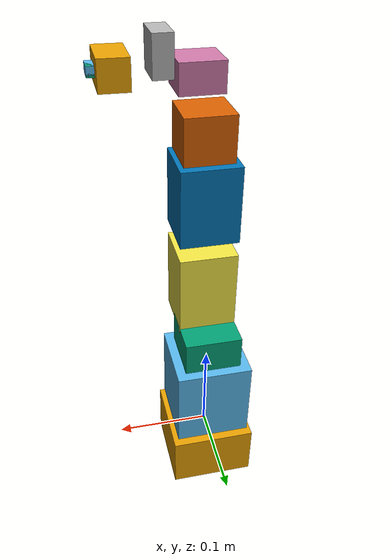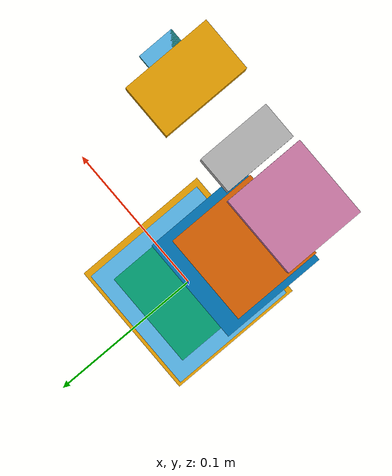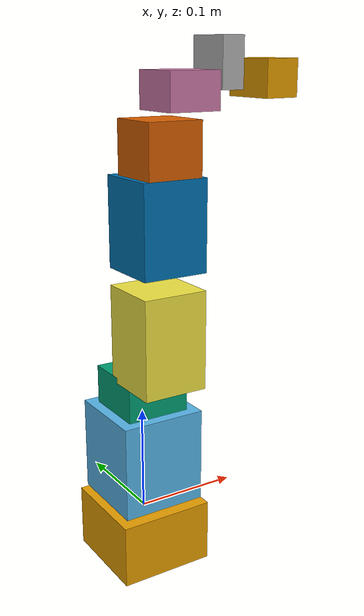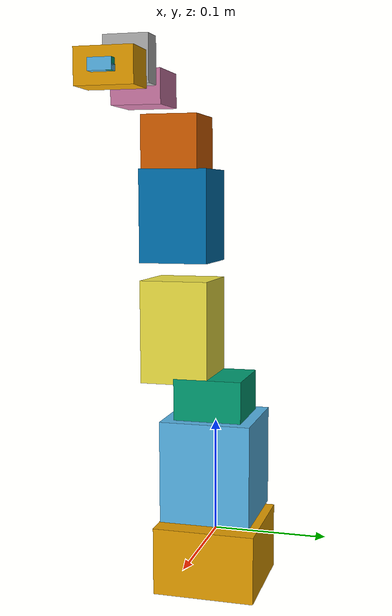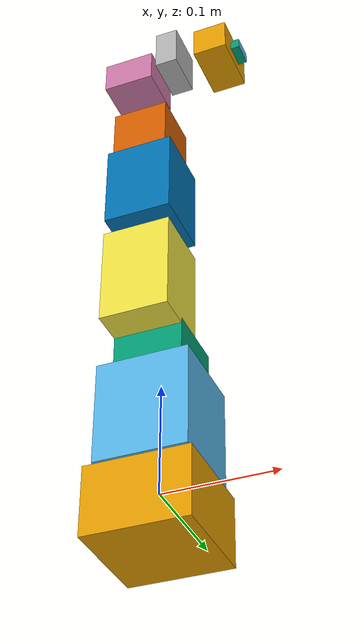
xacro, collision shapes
<?xml version="1.0"?>
<robot xmlns:xacro="http://www.ros.org/wiki/xacro" name="mycobot_280">
  <xacro:arg name="use_gz" default="true"/>
  <xacro:arg name="use_world_fixed" default="true"/>
  <xacro:arg name="mount_z" default="0.0"/>
  <xacro:arg name="controllers_config" default=""/>

  <xacro:include filename="$(find mycobot_description)/urdf/inertials.xacro"/>
  <xacro:include filename="$(find mycobot_description)/urdf/mycobot_280_arm.xacro"/>
  <xacro:include filename="$(find mycobot_description)/urdf/mycobot_280_gripper.xacro"/>

  <!-- Base cố định -->
  <xacro:if value="$(arg use_world_fixed)">
    <link name="world"/>
    <joint name="world_to_g_base" type="fixed">
      <parent link="world"/>
      <child link="g_base"/>
      <origin xyz="0 0 $(arg mount_z)" rpy="0 0 0"/>
    </joint>
  </xacro:if>

  <!-- ros2_control + plugin Gazebo -->
  <xacro:if value="$(arg use_gz)">
    <xacro:include filename="$(find mycobot_description)/urdf/mycobot_280.ros2_control.xacro"/>
    <xacro:include filename="$(find mycobot_description)/urdf/mycobot_280.gazebo.xacro"/>
    <xacro:mycobot_280_ros2_control name="GazeboSimSystem"/>
    <xacro:mycobot_280_gazebo controllers_config="$(arg controllers_config)"/>
  </xacro:if>
</robot>

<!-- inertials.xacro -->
<robot xmlns:xacro="http://www.ros.org/wiki/xacro">
  <xacro:macro name="box_inertial" params="mass:=0.2 size:=0.04">
    <inertial>
      <origin xyz="0 0 0" rpy="0 0 0"/>
      <mass value="${mass}"/>
      <xacro:property name="i" value="${(mass * (2.0 * size * size)) / 12.0}"/>
      <inertia ixx="${i}" ixy="0.0" ixz="0.0"
               iyy="${i}" iyz="0.0" izz="${i}"/>
    </inertial>
  </xacro:macro>
</robot>

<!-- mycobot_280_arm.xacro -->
<robot xmlns:xacro="http://www.ros.org/wiki/xacro">
  <xacro:property name="mesh" value="package://mycobot_description/meshes/mycobot_280_arduino"/>
  <xacro:property name="vel" value="3.14"/>
  <xacro:property name="eff" value="50.0"/>

  <!-- ================= LINKS ================= -->
  <link name="g_base">
    <visual>
      <geometry><mesh filename="${mesh}/G_base.dae"/></geometry>
      <origin xyz="-0.01 0 -0.032" rpy="0 0 1.5708"/>
    </visual>
    <collision>
      <geometry><box size="0.09 0.09 0.06"/></geometry>
      <origin xyz="0 0 -0.02" rpy="0 0 0"/>
    </collision>
    <xacro:box_inertial mass="0.5" size="0.05"/>
  </link>

  <link name="joint1">
    <visual>
      <geometry><mesh filename="${mesh}/joint1.dae"/></geometry>
      <origin xyz="0 0 0" rpy="0 0 -3.14159"/>
    </visual>
    <collision>
      <geometry><box size="0.08 0.08 0.09"/></geometry>
      <origin xyz="0 0 0.06" rpy="0 0 0"/>
    </collision>
    <xacro:box_inertial mass="0.3" size="0.04"/>
  </link>

  <link name="joint2">
    <visual>
      <geometry><mesh filename="${mesh}/joint2.dae"/></geometry>
      <origin xyz="0 0 -0.06096" rpy="0 0 -1.5708"/>
    </visual>
    <collision>
      <geometry><box size="0.06 0.06 0.08"/></geometry>
      <origin xyz="0 0 -0.03" rpy="0 0 0"/>
    </collision>
    <xacro:box_inertial mass="0.3" size="0.04"/>
  </link>

  <link name="joint3">
    <visual>
      <geometry><mesh filename="${mesh}/joint3.dae"/></geometry>
      <origin xyz="0 0 0.03256" rpy="0 -1.5708 0"/>
    </visual>
    <collision>
      <geometry><box size="0.09 0.06 0.06"/></geometry>
      <origin xyz="-0.05 0 0.03" rpy="0 0 0"/>
    </collision>
    <xacro:box_inertial mass="0.25" size="0.04"/>
  </link>

  <link name="joint4">
    <visual>
      <geometry><mesh filename="${mesh}/joint4.dae"/></geometry>
      <origin xyz="0 0 0.03056" rpy="0 -1.5708 0"/>
    </visual>
    <collision>
      <geometry><box size="0.08 0.06 0.06"/></geometry>
      <origin xyz="-0.04 0 0.03" rpy="0 0 0"/>
    </collision>
    <xacro:box_inertial mass="0.2" size="0.035"/>
  </link>

  <link name="joint5">
    <visual>
      <geometry><mesh filename="${mesh}/joint5.dae"/></geometry>
      <origin xyz="0 0 -0.03356" rpy="-1.5708 0 0"/>
    </visual>
    <collision>
      <geometry><box size="0.05 0.06 0.05"/></geometry>
      <origin xyz="0 0 -0.03" rpy="0 0 0"/>
    </collision>
    <xacro:box_inertial mass="0.2" size="0.035"/>
  </link>

  <link name="joint6">
    <visual>
      <geometry><mesh filename="${mesh}/joint6.dae"/></geometry>
      <origin xyz="0 0 -0.038" rpy="0 0 0"/>
    </visual>
    <collision>
      <geometry><box size="0.045 0.045 0.03"/></geometry>
      <origin xyz="0 0 -0.02" rpy="0 0 0"/>
    </collision>
    <xacro:box_inertial mass="0.15" size="0.03"/>
  </link>

  <link name="joint6_flange">
    <visual>
      <geometry><mesh filename="${mesh}/joint7.dae"/></geometry>
      <origin xyz="0 0 -0.012" rpy="0 0 0"/>
    </visual>
    <collision>
      <geometry><box size="0.04 0.04 0.02"/></geometry>
      <origin xyz="0 0 -0.01" rpy="0 0 0"/>
    </collision>
    <xacro:box_inertial mass="0.1" size="0.02"/>
  </link>

  <!-- ================= JOINTS ================= -->
  <joint name="g_base_to_joint1" type="fixed">
    <parent link="g_base"/>
    <child link="joint1"/>
    <origin xyz="0 0 0" rpy="0 0 0"/>
  </joint>

  <joint name="joint2_to_joint1" type="revolute">
    <axis xyz="0 0 1"/>
    <limit effort="${eff}" lower="-2.9321" upper="2.9321" velocity="${vel}"/>
    <parent link="joint1"/>
    <child link="joint2"/>
    <origin xyz="0 0 0.13156" rpy="0 0 0"/>
  </joint>

  <joint name="joint3_to_joint2" type="revolute">
    <axis xyz="0 0 1"/>
    <limit effort="${eff}" lower="-2.4434" upper="2.4434" velocity="${vel}"/>
    <parent link="joint2"/>
    <child link="joint3"/>
    <origin xyz="0 0 0" rpy="0 1.5708 -1.5708"/>
  </joint>

  <joint name="joint4_to_joint3" type="revolute">
    <axis xyz="0 0 1"/>
    <limit effort="${eff}" lower="-2.6179" upper="2.6179" velocity="${vel}"/>
    <parent link="joint3"/>
    <child link="joint4"/>
    <origin xyz="-0.1104 0 0" rpy="0 0 0"/>
  </joint>

  <joint name="joint5_to_joint4" type="revolute">
    <axis xyz="0 0 1"/>
    <limit effort="${eff}" lower="-2.6179" upper="2.6179" velocity="${vel}"/>
    <parent link="joint4"/>
    <child link="joint5"/>
    <origin xyz="-0.096 0 0.06462" rpy="0 0 -1.5708"/>
  </joint>

  <joint name="joint6_to_joint5" type="revolute">
    <axis xyz="0 0 1"/>
    <limit effort="${eff}" lower="-2.7052" upper="2.7925" velocity="${vel}"/>
    <parent link="joint5"/>
    <child link="joint6"/>
    <origin xyz="0 -0.07318 0" rpy="1.5708 -1.5708 0"/>
  </joint>

  <joint name="joint6output_to_joint6" type="revolute">
    <axis xyz="0 0 1"/>
    <limit effort="${eff}" lower="-3.14" upper="3.14159" velocity="${vel}"/>
    <parent link="joint6"/>
    <child link="joint6_flange"/>
    <origin xyz="0 0.0456 0" rpy="-1.5708 0 0"/>
  </joint>
</robot>

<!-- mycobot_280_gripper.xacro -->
<robot xmlns:xacro="http://www.ros.org/wiki/xacro">
  <xacro:property name="gmesh" value="package://mycobot_description/meshes/adaptive_gripper"/>
  <xacro:property name="gvel" value="2.0"/>
  <xacro:property name="geff" value="20.0"/>

  <xacro:macro name="finger_link" params="name mesh_file ox oy oz">
    <link name="${name}">
      <visual>
        <geometry><mesh filename="${gmesh}/${mesh_file}"/></geometry>
        <origin xyz="${ox} ${oy} ${oz}" rpy="0 0 0"/>
      </visual>
      <collision>
        <geometry><box size="0.02 0.03 0.01"/></geometry>
        <origin xyz="${ox} ${oy} ${oz}" rpy="0 0 0"/>
      </collision>
      <xacro:box_inertial mass="0.02" size="0.015"/>
    </link>
  </xacro:macro>

  <!-- Nối gripper vào flange của cánh tay -->
  <joint name="joint6output_to_gripper_base" type="fixed">
    <parent link="joint6_flange"/>
    <child link="gripper_base"/>
    <origin xyz="0 0 0.034" rpy="1.579 0 0"/>
  </joint>

  <link name="gripper_base">
    <visual>
      <geometry><mesh filename="${gmesh}/gripper_base.dae"/></geometry>
      <origin xyz="0 0 -0.012" rpy="0 0 0"/>
    </visual>
    <collision>
      <geometry><box size="0.05 0.03 0.03"/></geometry>
      <origin xyz="0 0 -0.012" rpy="0 0 0"/>
    </collision>
    <xacro:box_inertial mass="0.1" size="0.03"/>
  </link>

  <xacro:finger_link name="gripper_left1"  mesh_file="gripper_left1.dae"  ox="0.039"  oy="-0.0133" oz="-0.012"/>
  <xacro:finger_link name="gripper_left2"  mesh_file="gripper_left2.dae"  ox="0.005"  oy="-0.0195" oz="-0.012"/>
  <xacro:finger_link name="gripper_left3"  mesh_file="gripper_left3.dae"  ox="0.012"  oy="0.0025"  oz="-0.012"/>
  <xacro:finger_link name="gripper_right1" mesh_file="gripper_right1.dae" ox="-0.039" oy="-0.0133" oz="-0.012"/>
  <xacro:finger_link name="gripper_right2" mesh_file="gripper_right2.dae" ox="-0.005" oy="-0.0195" oz="-0.012"/>
  <xacro:finger_link name="gripper_right3" mesh_file="gripper_right3.dae" ox="-0.012" oy="0.0025"  oz="-0.012"/>

  <!-- Khớp điều khiển chính (đã đổi tên) -->
  <joint name="gripper_finger_joint" type="revolute">
    <axis xyz="0 0 1"/>
    <limit effort="${geff}" lower="-0.74" upper="0.15" velocity="${gvel}"/>
    <parent link="gripper_base"/>
    <child link="gripper_left3"/>
    <origin xyz="-0.012 0.005 0" rpy="0 0 0"/>
  </joint>

  <joint name="gripper_base_to_gripper_left2" type="revolute">
    <axis xyz="0 0 1"/>
    <limit effort="${geff}" lower="-0.8" upper="0.5" velocity="${gvel}"/>
    <parent link="gripper_base"/>
    <child link="gripper_left2"/>
    <origin xyz="-0.005 0.027 0" rpy="0 0 0"/>
    <mimic joint="gripper_finger_joint" multiplier="1.0" offset="0"/>
  </joint>

  <joint name="gripper_left3_to_gripper_left1" type="revolute">
    <axis xyz="0 0 1"/>
    <limit effort="${geff}" lower="-0.5" upper="0.5" velocity="${gvel}"/>
    <parent link="gripper_left3"/>
    <child link="gripper_left1"/>
    <origin xyz="-0.027 0.016 0" rpy="0 0 0"/>
    <mimic joint="gripper_finger_joint" multiplier="-1.0" offset="0"/>
  </joint>

  <joint name="gripper_base_to_gripper_right3" type="revolute">
    <axis xyz="0 0 1"/>
    <limit effort="${geff}" lower="-0.15" upper="0.7" velocity="${gvel}"/>
    <parent link="gripper_base"/>
    <child link="gripper_right3"/>
    <origin xyz="0.012 0.005 0" rpy="0 0 0"/>
    <mimic joint="gripper_finger_joint" multiplier="-1.0" offset="0"/>
  </joint>

  <joint name="gripper_base_to_gripper_right2" type="revolute">
    <axis xyz="0 0 1"/>
    <limit effort="${geff}" lower="-0.5" upper="0.8" velocity="${gvel}"/>
    <parent link="gripper_base"/>
    <child link="gripper_right2"/>
    <origin xyz="0.005 0.027 0" rpy="0 0 0"/>
    <mimic joint="gripper_finger_joint" multiplier="-1.0" offset="0"/>
  </joint>

  <joint name="gripper_right3_to_gripper_right1" type="revolute">
    <axis xyz="0 0 1"/>
    <limit effort="${geff}" lower="-0.5" upper="0.5" velocity="${gvel}"/>
    <parent link="gripper_right3"/>
    <child link="gripper_right1"/>
    <origin xyz="0.027 0.016 0" rpy="0 0 0"/>
    <mimic joint="gripper_finger_joint" multiplier="1.0" offset="0"/>
  </joint>

  <!-- Điểm gắp: giữa 2 ngón, dùng cho attach vật + MoveIt EE. Offset tạm, tinh chỉnh Phase 6/7. -->
  <link name="grasp_center"/>
  <joint name="gripper_base_to_grasp_center" type="fixed">
    <parent link="gripper_base"/>
    <child link="grasp_center"/>
    <origin xyz="0 0.05 -0.012" rpy="0 0 0"/>
  </joint>
</robot>
